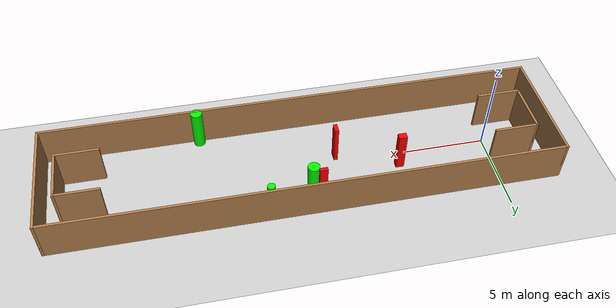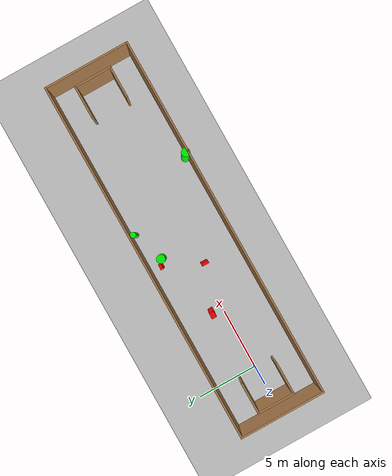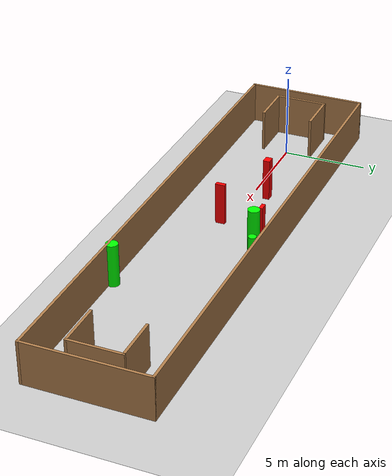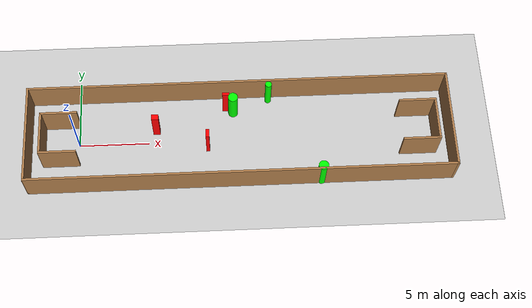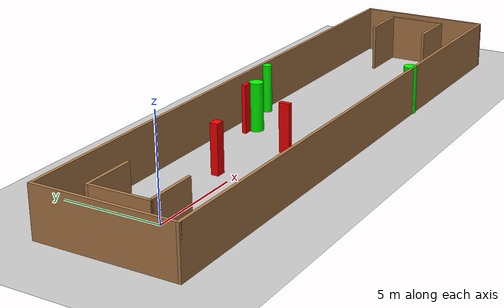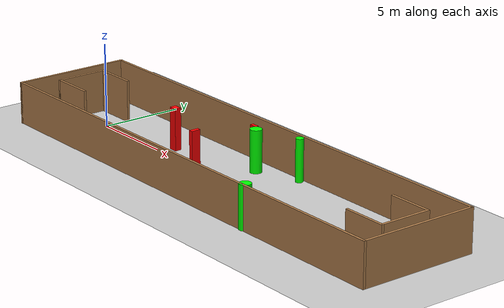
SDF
<sdf version="1.7">
 <world name="default">
  <light name="sun" type="directional">
   <pose>0 0 10 0 -0 0</pose>
   <diffuse>0.8 0.8 0.8 1</diffuse>
   <specular>0.2 0.2 0.2 1</specular>
   <attenuation>
    <range>1000</range>
    <constant>0.9</constant>
    <linear>0.01</linear>
    <quadratic>0.001</quadratic>
   </attenuation>
   <direction>-0.5 0.1 -0.9</direction>
   <spot><inner_angle>0</inner_angle><outer_angle>0</outer_angle><falloff>0</falloff></spot>
  </light>
  <model name="ground_plane">
   <static>1</static>
   <link name="link">
    <collision name="collision">
     <geometry><plane><normal>0 0 1</normal><size>100 100</size></plane></geometry>
     <surface>
      <contact><collide_bitmask>65535</collide_bitmask></contact>
      <friction><ode><mu>100</mu><mu2>50</mu2></ode></friction>
     </surface>
    </collision>
    <visual name="visual">
     <cast_shadows>0</cast_shadows>
     <geometry><plane><normal>0 0 1</normal><size>100 100</size></plane></geometry>
     <material>
      <script><uri>file://media/materials/scripts/gazebo.material</uri><name>Gazebo/Grey</name></script>
     </material>
    </visual>
   </link>
  </model>
  <gravity>0 0 -9.8</gravity>
  <magnetic_field>6e-06 2.3e-05 -4.2e-05</magnetic_field>
  <atmosphere type="adiabatic"/>
  <physics type="ode">
   <max_step_size>0.001</max_step_size>
   <real_time_factor>1</real_time_factor>
   <real_time_update_rate>1000</real_time_update_rate>
  </physics>
  <scene><ambient>0.4 0.4 0.4 1</ambient><background>0.7 0.7 0.7 1</background><shadows>1</shadows></scene>
  <spherical_coordinates>
   <surface_model>EARTH_WGS84</surface_model>
   <latitude_deg>0</latitude_deg>
   <longitude_deg>0</longitude_deg>
   <elevation>0</elevation>
   <heading_deg>0</heading_deg>
  </spherical_coordinates>
  <model name="my_base_walls">
   <link name="Wall_0">
    <collision name="Wall_0_Collision">
     <geometry><box><size>7.15 0.15 2.5</size></box></geometry>
     <pose>0 0 1.25 0 -0 0</pose>
    </collision>
    <visual name="Wall_0_Visual">
     <pose>0 0 1.25 0 -0 0</pose>
     <geometry><box><size>7.15 0.15 2.5</size></box></geometry>
     <material>
      <script><uri>file://media/materials/scripts/gazebo.material</uri><name>Gazebo/Wood</name></script>
      <ambient>1 1 1 1</ambient>
     </material>
     <meta><layer>0</layer></meta>
    </visual>
    <pose>-15 0 0 0 -0 1.5708</pose>
   </link>
   <link name="Wall_10">
    <collision name="Wall_10_Collision">
     <geometry><box><size>2.65 0.15 2.5</size></box></geometry>
     <pose>0 0 1.25 0 -0 0</pose>
    </collision>
    <visual name="Wall_10_Visual">
     <pose>0 0 1.25 0 -0 0</pose>
     <geometry><box><size>2.65 0.15 2.5</size></box></geometry>
     <material>
      <script><uri>file://media/materials/scripts/gazebo.material</uri><name>Gazebo/Wood</name></script>
      <ambient>1 1 1 1</ambient>
     </material>
     <meta><layer>0</layer></meta>
    </visual>
    <pose>-12.75 -1.5 0 0 -0 0</pose>
   </link>
   <link name="Wall_12">
    <collision name="Wall_12_Collision">
     <geometry><box><size>2.65 0.15 2.5</size></box></geometry>
     <pose>0 0 1.25 0 -0 0</pose>
    </collision>
    <visual name="Wall_12_Visual">
     <pose>0 0 1.25 0 -0 0</pose>
     <geometry><box><size>2.65 0.15 2.5</size></box></geometry>
     <material>
      <script><uri>file://media/materials/scripts/gazebo.material</uri><name>Gazebo/Wood</name></script>
      <ambient>1 1 1 1</ambient>
     </material>
     <meta><layer>0</layer></meta>
    </visual>
    <pose>-12.75 1.5 0 0 -0 0</pose>
   </link>
   <link name="Wall_14">
    <collision name="Wall_14_Collision">
     <geometry><box><size>3.15 0.15 2.5</size></box></geometry>
     <pose>0 0 1.25 0 -0 0</pose>
    </collision>
    <visual name="Wall_14_Visual">
     <pose>0 0 1.25 0 -0 0</pose>
     <geometry><box><size>3.15 0.15 2.5</size></box></geometry>
     <material>
      <script><uri>file://media/materials/scripts/gazebo.material</uri><name>Gazebo/Wood</name></script>
      <ambient>1 1 1 1</ambient>
     </material>
     <meta><layer>0</layer></meta>
    </visual>
    <pose>14 0 0 0 -0 -1.5708</pose>
   </link>
   <link name="Wall_15">
    <collision name="Wall_15_Collision">
     <geometry><box><size>2.65 0.15 2.5</size></box></geometry>
     <pose>0 0 1.25 0 -0 0</pose>
    </collision>
    <visual name="Wall_15_Visual">
     <pose>0 0 1.25 0 -0 0</pose>
     <geometry><box><size>2.65 0.15 2.5</size></box></geometry>
     <material>
      <script><uri>file://media/materials/scripts/gazebo.material</uri><name>Gazebo/Wood</name></script>
      <ambient>1 1 1 1</ambient>
     </material>
     <meta><layer>0</layer></meta>
    </visual>
    <pose>12.75 -1.5 0 0 -0 3.14159</pose>
   </link>
   <link name="Wall_17">
    <collision name="Wall_17_Collision">
     <geometry><box><size>2.65 0.15 2.5</size></box></geometry>
     <pose>0 0 1.25 0 -0 0</pose>
    </collision>
    <visual name="Wall_17_Visual">
     <pose>0 0 1.25 0 -0 0</pose>
     <geometry><box><size>2.65 0.15 2.5</size></box></geometry>
     <material>
      <script><uri>file://media/materials/scripts/gazebo.material</uri><name>Gazebo/Wood</name></script>
      <ambient>1 1 1 1</ambient>
     </material>
     <meta><layer>0</layer></meta>
    </visual>
    <pose>12.75 1.5 0 0 -0 3.14159</pose>
   </link>
   <link name="Wall_2">
    <collision name="Wall_2_Collision">
     <geometry><box><size>30.15 0.15 2.5</size></box></geometry>
     <pose>0 0 1.25 0 -0 0</pose>
    </collision>
    <visual name="Wall_2_Visual">
     <pose>0 0 1.25 0 -0 0</pose>
     <geometry><box><size>30.15 0.15 2.5</size></box></geometry>
     <material>
      <script><uri>file://media/materials/scripts/gazebo.material</uri><name>Gazebo/Wood</name></script>
      <ambient>1 1 1 1</ambient>
     </material>
     <meta><layer>0</layer></meta>
    </visual>
    <pose>-0 -3.5 0 0 -0 0</pose>
   </link>
   <link name="Wall_4">
    <collision name="Wall_4_Collision">
     <geometry><box><size>30.15 0.15 2.5</size></box></geometry>
     <pose>0 0 1.25 0 -0 0</pose>
    </collision>
    <visual name="Wall_4_Visual">
     <pose>0 0 1.25 0 -0 0</pose>
     <geometry><box><size>30.15 0.15 2.5</size></box></geometry>
     <material>
      <script><uri>file://media/materials/scripts/gazebo.material</uri><name>Gazebo/Wood</name></script>
      <ambient>1 1 1 1</ambient>
     </material>
     <meta><layer>0</layer></meta>
    </visual>
    <pose>-0 3.5 0 0 -0 0</pose>
   </link>
   <link name="Wall_6">
    <collision name="Wall_6_Collision">
     <geometry><box><size>7.15 0.15 2.5</size></box></geometry>
     <pose>0 0 1.25 0 -0 0</pose>
    </collision>
    <visual name="Wall_6_Visual">
     <pose>0 0 1.25 0 -0 0</pose>
     <geometry><box><size>7.15 0.15 2.5</size></box></geometry>
     <material>
      <script><uri>file://media/materials/scripts/gazebo.material</uri><name>Gazebo/Wood</name></script>
      <ambient>1 1 1 1</ambient>
     </material>
     <meta><layer>0</layer></meta>
    </visual>
    <pose>15 0 0 0 -0 -1.5708</pose>
   </link>
   <link name="Wall_9">
    <collision name="Wall_9_Collision">
     <geometry><box><size>3.15 0.15 2.5</size></box></geometry>
     <pose>0 0 1.25 0 -0 0</pose>
    </collision>
    <visual name="Wall_9_Visual">
     <pose>0 0 1.25 0 -0 0</pose>
     <geometry><box><size>3.15 0.15 2.5</size></box></geometry>
     <material>
      <script><uri>file://media/materials/scripts/gazebo.material</uri><name>Gazebo/Wood</name></script>
      <ambient>1 1 1 1</ambient>
     </material>
     <meta><layer>0</layer></meta>
    </visual>
    <pose>-14 0 0 0 -0 -1.5708</pose>
   </link>
   <static>1</static>
   <pose>11.5 0 0 0 -0 0</pose>
  </model>
  <model name="cylinder1">
   <static>1</static>
   <link name="link">
    <inertial>
     <mass>1</mass>
     <inertia><ixx>0.5</ixx><ixy>0</ixy><ixz>0</ixz><iyy>0.5</iyy><iyz>0</iyz><izz>1</izz></inertia>
    </inertial>
    <collision name="collision">
     <geometry><cylinder><radius>0.22946476426344745</radius><length>2.5</length></cylinder></geometry>
    </collision>
    <visual name="visual">
     <geometry><cylinder><radius>0.22946476426344745</radius><length>2.5</length></cylinder></geometry>
     <material>
      <ambient>0 1 0 1</ambient>
      <diffuse>0 1 0 1</diffuse>
      <specular>0.1 0.1 0.1 1</specular>
      <emissive>0 0 0 0</emissive>
     </material>
    </visual>
   </link>
   <pose>13.720531188096876 3.161437501213766 1.25 0 0 0</pose>
  </model>
  <model name="cylinder2">
   <static>1</static>
   <link name="link">
    <inertial>
     <mass>1</mass>
     <inertia><ixx>0.5</ixx><ixy>0</ixy><ixz>0</ixz><iyy>0.5</iyy><iyz>0</iyz><izz>1</izz></inertia>
    </inertial>
    <collision name="collision">
     <geometry><cylinder><radius>0.3494303784299695</radius><length>2.5</length></cylinder></geometry>
    </collision>
    <visual name="visual">
     <geometry><cylinder><radius>0.3494303784299695</radius><length>2.5</length></cylinder></geometry>
     <material>
      <ambient>0 1 0 1</ambient>
      <diffuse>0 1 0 1</diffuse>
      <specular>0.1 0.1 0.1 1</specular>
      <emissive>0 0 0 0</emissive>
     </material>
    </visual>
   </link>
   <pose>11.131610803575963 2.227222431872139 1.25 0 0 0</pose>
  </model>
  <model name="cylinder3">
   <static>1</static>
   <link name="link">
    <inertial>
     <mass>1</mass>
     <inertia><ixx>0.5</ixx><ixy>0</ixy><ixz>0</ixz><iyy>0.5</iyy><iyz>0</iyz><izz>1</izz></inertia>
    </inertial>
    <collision name="collision">
     <geometry><cylinder><radius>0.34573831555012435</radius><length>2.5</length></cylinder></geometry>
    </collision>
    <visual name="visual">
     <geometry><cylinder><radius>0.34573831555012435</radius><length>2.5</length></cylinder></geometry>
     <material>
      <ambient>0 1 0 1</ambient>
      <diffuse>0 1 0 1</diffuse>
      <specular>0.1 0.1 0.1 1</specular>
      <emissive>0 0 0 0</emissive>
     </material>
    </visual>
   </link>
   <pose>17.190717270160643 -3.2938359654225016 1.25 0 0 0</pose>
  </model>
  <model name="box1">
   <static>1</static>
   <link name="link">
    <inertial>
     <mass>1</mass>
     <inertia><ixx>0.083</ixx><ixy>0</ixy><ixz>0</ixz><iyy>0.083</iyy><iyz>0</iyz><izz>0.083</izz></inertia>
    </inertial>
    <collision name="collision">
     <geometry><box><size>0.4896443398916908 0.3951087133340786 2.5</size></box></geometry>
    </collision>
    <visual name="visual">
     <geometry><box><size>0.4896443398916908 0.3951087133340786 2.5</size></box></geometry>
     <material>
      <ambient>1 0 0 1</ambient>
      <diffuse>1 0 0 1</diffuse>
      <specular>0.1 0.1 0.1 1</specular>
      <emissive>0 0 0 0</emissive>
     </material>
    </visual>
    <sensor name="my_contact" type="contact">
     <contact><collision>box_collision</collision><topic>__default_topic__</topic></contact>
    </sensor>
   </link>
   <pose>5.566449540040502 0.8843511213390718 1.25 0 0 0</pose>
  </model>
  <model name="box2">
   <static>1</static>
   <link name="link">
    <inertial>
     <mass>1</mass>
     <inertia><ixx>0.083</ixx><ixy>0</ixy><ixz>0</ixz><iyy>0.083</iyy><iyz>0</iyz><izz>0.083</izz></inertia>
    </inertial>
    <collision name="collision">
     <geometry><box><size>0.47913967019469045 0.21049099388948944 2.5</size></box></geometry>
    </collision>
    <visual name="visual">
     <geometry><box><size>0.47913967019469045 0.21049099388948944 2.5</size></box></geometry>
     <material>
      <ambient>1 0 0 1</ambient>
      <diffuse>1 0 0 1</diffuse>
      <specular>0.1 0.1 0.1 1</specular>
      <emissive>0 0 0 0</emissive>
     </material>
    </visual>
    <sensor name="my_contact" type="contact">
     <contact><collision>box_collision</collision><topic>__default_topic__</topic></contact>
    </sensor>
   </link>
   <pose>10.62797211942225 2.5080763861362207 1.25 0 0 0</pose>
  </model>
  <model name="box3">
   <static>1</static>
   <link name="link">
    <inertial>
     <mass>1</mass>
     <inertia><ixx>0.083</ixx><ixy>0</ixy><ixz>0</ixz><iyy>0.083</iyy><iyz>0</iyz><izz>0.083</izz></inertia>
    </inertial>
    <collision name="collision">
     <geometry><box><size>0.23886062479033524 0.5619088268069782 2.5</size></box></geometry>
    </collision>
    <visual name="visual">
     <geometry><box><size>0.23886062479033524 0.5619088268069782 2.5</size></box></geometry>
     <material>
      <ambient>1 0 0 1</ambient>
      <diffuse>1 0 0 1</diffuse>
      <specular>0.1 0.1 0.1 1</specular>
      <emissive>0 0 0 0</emissive>
     </material>
    </visual>
    <sensor name="my_contact" type="contact">
     <contact><collision>box_collision</collision><topic>__default_topic__</topic></contact>
    </sensor>
   </link>
   <pose>9.236141940797799 -0.5097999113330021 1.25 0 0 0</pose>
  </model>
 </world>
</sdf>
